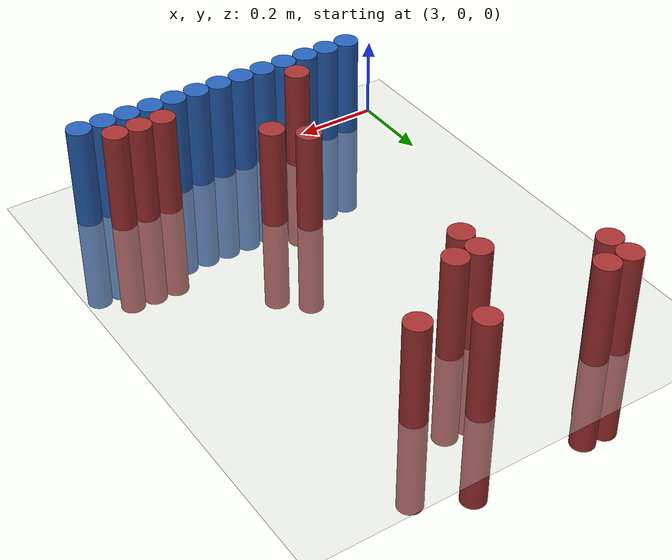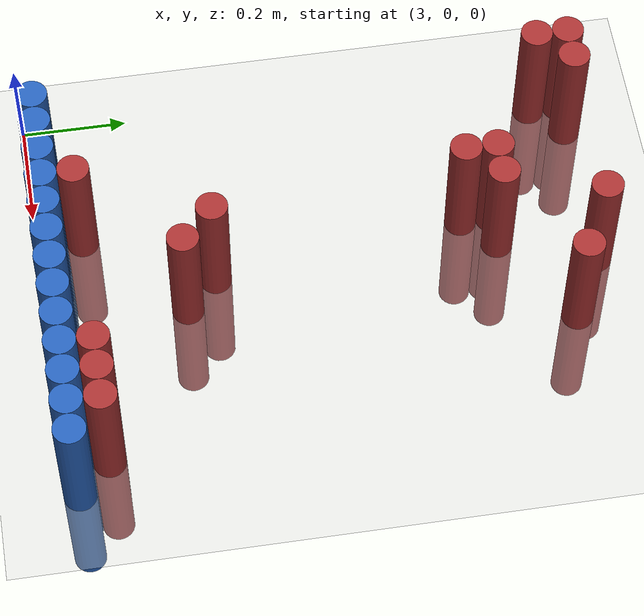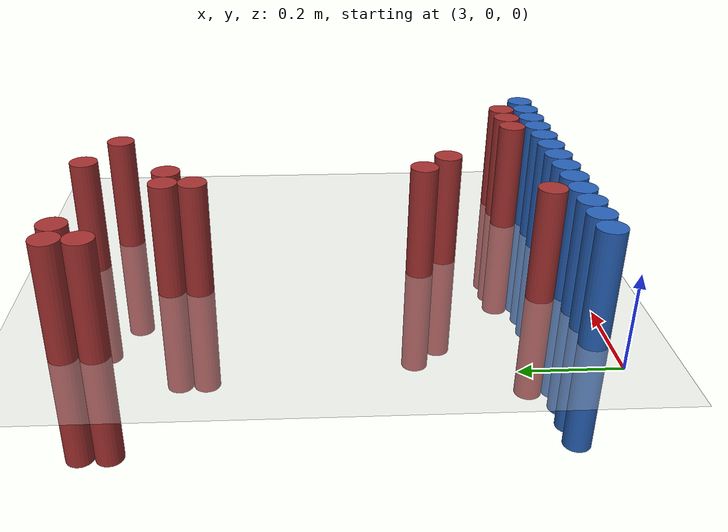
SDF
<sdf version="1.6">
 <world name="default">
  <model name="ground_plane">
   <static>1</static>
   <link name="link">
    <collision name="collision">
     <geometry><plane><normal>0 0 1</normal><size>100 100</size></plane></geometry>
     <surface><friction><ode><mu>100</mu><mu2>50</mu2></ode></friction></surface>
    </collision>
    <visual name="visual">
     <cast_shadows>0</cast_shadows>
     <geometry><plane><normal>0 0 1</normal><size>100 100</size></plane></geometry>
     <material>
      <script><uri>file://media/materials/scripts/gazebo.material</uri><name>Gazebo/Grey</name></script>
     </material>
    </visual>
   </link>
  </model>
  <model name="unit_cylinder_148">
   <static>1</static>
   <pose>3.090000 1.050000 0.000000 0.000000 0.000000 0.000000</pose>
   <link name="link">
    <inertial>
     <mass>1</mass>
     <inertia><ixx>0.145833</ixx><ixy>0</ixy><ixz>0</ixz><iyy>0.145833</iyy><iyz>0</iyz><izz>0.125</izz></inertia>
    </inertial>
    <collision name="collision">
     <geometry><cylinder><radius>0.030000</radius><length>0.5</length></cylinder></geometry>
    </collision>
    <visual name="visual">
     <geometry><cylinder><radius>0.030000</radius><length>0.5</length></cylinder></geometry>
     <material>
      <ambient>0.648000 0.192000 0.192000 1</ambient>
      <diffuse>0.648000 0.192000 0.192000 1</diffuse>
     </material>
     <material>
      <script><name>Gazebo/Grey</name><uri>file://media/materials/scripts/gazebo.material</uri></script>
     </material>
    </visual>
   </link>
  </model>
  <model name="unit_cylinder_149">
   <static>1</static>
   <pose>3.150000 1.050000 0.000000 0.000000 0.000000 0.000000</pose>
   <link name="link">
    <inertial>
     <mass>1</mass>
     <inertia><ixx>0.145833</ixx><ixy>0</ixy><ixz>0</ixz><iyy>0.145833</iyy><iyz>0</iyz><izz>0.125</izz></inertia>
    </inertial>
    <collision name="collision">
     <geometry><cylinder><radius>0.030000</radius><length>0.5</length></cylinder></geometry>
    </collision>
    <visual name="visual">
     <geometry><cylinder><radius>0.030000</radius><length>0.5</length></cylinder></geometry>
     <material>
      <ambient>0.648000 0.192000 0.192000 1</ambient>
      <diffuse>0.648000 0.192000 0.192000 1</diffuse>
     </material>
     <material>
      <script><name>Gazebo/Grey</name><uri>file://media/materials/scripts/gazebo.material</uri></script>
     </material>
    </visual>
   </link>
  </model>
  <model name="unit_cylinder_150">
   <static>1</static>
   <pose>3.450000 1.050000 0.000000 0.000000 0.000000 0.000000</pose>
   <link name="link">
    <inertial>
     <mass>1</mass>
     <inertia><ixx>0.145833</ixx><ixy>0</ixy><ixz>0</ixz><iyy>0.145833</iyy><iyz>0</iyz><izz>0.125</izz></inertia>
    </inertial>
    <collision name="collision">
     <geometry><cylinder><radius>0.030000</radius><length>0.5</length></cylinder></geometry>
    </collision>
    <visual name="visual">
     <geometry><cylinder><radius>0.030000</radius><length>0.5</length></cylinder></geometry>
     <material>
      <ambient>0.648000 0.192000 0.192000 1</ambient>
      <diffuse>0.648000 0.192000 0.192000 1</diffuse>
     </material>
     <material>
      <script><name>Gazebo/Grey</name><uri>file://media/materials/scripts/gazebo.material</uri></script>
     </material>
    </visual>
   </link>
  </model>
  <model name="unit_cylinder_155">
   <static>1</static>
   <pose>3.090000 0.990000 0.000000 0.000000 0.000000 0.000000</pose>
   <link name="link">
    <inertial>
     <mass>1</mass>
     <inertia><ixx>0.145833</ixx><ixy>0</ixy><ixz>0</ixz><iyy>0.145833</iyy><iyz>0</iyz><izz>0.125</izz></inertia>
    </inertial>
    <collision name="collision">
     <geometry><cylinder><radius>0.030000</radius><length>0.5</length></cylinder></geometry>
    </collision>
    <visual name="visual">
     <geometry><cylinder><radius>0.030000</radius><length>0.5</length></cylinder></geometry>
     <material>
      <ambient>0.648000 0.192000 0.192000 1</ambient>
      <diffuse>0.648000 0.192000 0.192000 1</diffuse>
     </material>
     <material>
      <script><name>Gazebo/Grey</name><uri>file://media/materials/scripts/gazebo.material</uri></script>
     </material>
    </visual>
   </link>
  </model>
  <model name="unit_cylinder_156">
   <static>1</static>
   <pose>3.570000 0.990000 0.000000 0.000000 0.000000 0.000000</pose>
   <link name="link">
    <inertial>
     <mass>1</mass>
     <inertia><ixx>0.145833</ixx><ixy>0</ixy><ixz>0</ixz><iyy>0.145833</iyy><iyz>0</iyz><izz>0.125</izz></inertia>
    </inertial>
    <collision name="collision">
     <geometry><cylinder><radius>0.030000</radius><length>0.5</length></cylinder></geometry>
    </collision>
    <visual name="visual">
     <geometry><cylinder><radius>0.030000</radius><length>0.5</length></cylinder></geometry>
     <material>
      <ambient>0.648000 0.192000 0.192000 1</ambient>
      <diffuse>0.648000 0.192000 0.192000 1</diffuse>
     </material>
     <material>
      <script><name>Gazebo/Grey</name><uri>file://media/materials/scripts/gazebo.material</uri></script>
     </material>
    </visual>
   </link>
  </model>
  <model name="unit_cylinder_163">
   <static>1</static>
   <pose>3.330000 0.870000 0.000000 0.000000 0.000000 0.000000</pose>
   <link name="link">
    <inertial>
     <mass>1</mass>
     <inertia><ixx>0.145833</ixx><ixy>0</ixy><ixz>0</ixz><iyy>0.145833</iyy><iyz>0</iyz><izz>0.125</izz></inertia>
    </inertial>
    <collision name="collision">
     <geometry><cylinder><radius>0.030000</radius><length>0.5</length></cylinder></geometry>
    </collision>
    <visual name="visual">
     <geometry><cylinder><radius>0.030000</radius><length>0.5</length></cylinder></geometry>
     <material>
      <ambient>0.648000 0.192000 0.192000 1</ambient>
      <diffuse>0.648000 0.192000 0.192000 1</diffuse>
     </material>
     <material>
      <script><name>Gazebo/Grey</name><uri>file://media/materials/scripts/gazebo.material</uri></script>
     </material>
    </visual>
   </link>
  </model>
  <model name="unit_cylinder_164">
   <static>1</static>
   <pose>3.390000 0.870000 0.000000 0.000000 0.000000 0.000000</pose>
   <link name="link">
    <inertial>
     <mass>1</mass>
     <inertia><ixx>0.145833</ixx><ixy>0</ixy><ixz>0</ixz><iyy>0.145833</iyy><iyz>0</iyz><izz>0.125</izz></inertia>
    </inertial>
    <collision name="collision">
     <geometry><cylinder><radius>0.030000</radius><length>0.5</length></cylinder></geometry>
    </collision>
    <visual name="visual">
     <geometry><cylinder><radius>0.030000</radius><length>0.5</length></cylinder></geometry>
     <material>
      <ambient>0.648000 0.192000 0.192000 1</ambient>
      <diffuse>0.648000 0.192000 0.192000 1</diffuse>
     </material>
     <material>
      <script><name>Gazebo/Grey</name><uri>file://media/materials/scripts/gazebo.material</uri></script>
     </material>
    </visual>
   </link>
  </model>
  <model name="unit_cylinder_170">
   <static>1</static>
   <pose>3.330000 0.810000 0.000000 0.000000 0.000000 0.000000</pose>
   <link name="link">
    <inertial>
     <mass>1</mass>
     <inertia><ixx>0.145833</ixx><ixy>0</ixy><ixz>0</ixz><iyy>0.145833</iyy><iyz>0</iyz><izz>0.125</izz></inertia>
    </inertial>
    <collision name="collision">
     <geometry><cylinder><radius>0.030000</radius><length>0.5</length></cylinder></geometry>
    </collision>
    <visual name="visual">
     <geometry><cylinder><radius>0.030000</radius><length>0.5</length></cylinder></geometry>
     <material>
      <ambient>0.648000 0.192000 0.192000 1</ambient>
      <diffuse>0.648000 0.192000 0.192000 1</diffuse>
     </material>
     <material>
      <script><name>Gazebo/Grey</name><uri>file://media/materials/scripts/gazebo.material</uri></script>
     </material>
    </visual>
   </link>
  </model>
  <model name="unit_cylinder_174">
   <static>1</static>
   <pose>3.390000 0.330000 0.000000 0.000000 0.000000 0.000000</pose>
   <link name="link">
    <inertial>
     <mass>1</mass>
     <inertia><ixx>0.145833</ixx><ixy>0</ixy><ixz>0</ixz><iyy>0.145833</iyy><iyz>0</iyz><izz>0.125</izz></inertia>
    </inertial>
    <collision name="collision">
     <geometry><cylinder><radius>0.030000</radius><length>0.5</length></cylinder></geometry>
    </collision>
    <visual name="visual">
     <geometry><cylinder><radius>0.030000</radius><length>0.5</length></cylinder></geometry>
     <material>
      <ambient>0.648000 0.192000 0.192000 1</ambient>
      <diffuse>0.648000 0.192000 0.192000 1</diffuse>
     </material>
     <material>
      <script><name>Gazebo/Grey</name><uri>file://media/materials/scripts/gazebo.material</uri></script>
     </material>
    </visual>
   </link>
  </model>
  <model name="unit_cylinder_175">
   <static>1</static>
   <pose>3.450000 0.270000 0.000000 0.000000 0.000000 0.000000</pose>
   <link name="link">
    <inertial>
     <mass>1</mass>
     <inertia><ixx>0.145833</ixx><ixy>0</ixy><ixz>0</ixz><iyy>0.145833</iyy><iyz>0</iyz><izz>0.125</izz></inertia>
    </inertial>
    <collision name="collision">
     <geometry><cylinder><radius>0.030000</radius><length>0.5</length></cylinder></geometry>
    </collision>
    <visual name="visual">
     <geometry><cylinder><radius>0.030000</radius><length>0.5</length></cylinder></geometry>
     <material>
      <ambient>0.648000 0.192000 0.192000 1</ambient>
      <diffuse>0.648000 0.192000 0.192000 1</diffuse>
     </material>
     <material>
      <script><name>Gazebo/Grey</name><uri>file://media/materials/scripts/gazebo.material</uri></script>
     </material>
    </visual>
   </link>
  </model>
  <model name="unit_cylinder_178">
   <static>1</static>
   <pose>3.270000 0.090000 0.000000 0.000000 0.000000 0.000000</pose>
   <link name="link">
    <inertial>
     <mass>1</mass>
     <inertia><ixx>0.145833</ixx><ixy>0</ixy><ixz>0</ixz><iyy>0.145833</iyy><iyz>0</iyz><izz>0.125</izz></inertia>
    </inertial>
    <collision name="collision">
     <geometry><cylinder><radius>0.030000</radius><length>0.5</length></cylinder></geometry>
    </collision>
    <visual name="visual">
     <geometry><cylinder><radius>0.030000</radius><length>0.5</length></cylinder></geometry>
     <material>
      <ambient>0.648000 0.192000 0.192000 1</ambient>
      <diffuse>0.648000 0.192000 0.192000 1</diffuse>
     </material>
     <material>
      <script><name>Gazebo/Grey</name><uri>file://media/materials/scripts/gazebo.material</uri></script>
     </material>
    </visual>
   </link>
  </model>
  <model name="unit_cylinder_179">
   <static>1</static>
   <pose>3.630000 0.090000 0.000000 0.000000 0.000000 0.000000</pose>
   <link name="link">
    <inertial>
     <mass>1</mass>
     <inertia><ixx>0.145833</ixx><ixy>0</ixy><ixz>0</ixz><iyy>0.145833</iyy><iyz>0</iyz><izz>0.125</izz></inertia>
    </inertial>
    <collision name="collision">
     <geometry><cylinder><radius>0.030000</radius><length>0.5</length></cylinder></geometry>
    </collision>
    <visual name="visual">
     <geometry><cylinder><radius>0.030000</radius><length>0.5</length></cylinder></geometry>
     <material>
      <ambient>0.648000 0.192000 0.192000 1</ambient>
      <diffuse>0.648000 0.192000 0.192000 1</diffuse>
     </material>
     <material>
      <script><name>Gazebo/Grey</name><uri>file://media/materials/scripts/gazebo.material</uri></script>
     </material>
    </visual>
   </link>
  </model>
  <model name="unit_cylinder_180">
   <static>1</static>
   <pose>3.690000 0.090000 0.000000 0.000000 0.000000 0.000000</pose>
   <link name="link">
    <inertial>
     <mass>1</mass>
     <inertia><ixx>0.145833</ixx><ixy>0</ixy><ixz>0</ixz><iyy>0.145833</iyy><iyz>0</iyz><izz>0.125</izz></inertia>
    </inertial>
    <collision name="collision">
     <geometry><cylinder><radius>0.030000</radius><length>0.5</length></cylinder></geometry>
    </collision>
    <visual name="visual">
     <geometry><cylinder><radius>0.030000</radius><length>0.5</length></cylinder></geometry>
     <material>
      <ambient>0.648000 0.192000 0.192000 1</ambient>
      <diffuse>0.648000 0.192000 0.192000 1</diffuse>
     </material>
     <material>
      <script><name>Gazebo/Grey</name><uri>file://media/materials/scripts/gazebo.material</uri></script>
     </material>
    </visual>
   </link>
  </model>
  <model name="unit_cylinder_181">
   <static>1</static>
   <pose>3.750000 0.090000 0.000000 0.000000 0.000000 0.000000</pose>
   <link name="link">
    <inertial>
     <mass>1</mass>
     <inertia><ixx>0.145833</ixx><ixy>0</ixy><ixz>0</ixz><iyy>0.145833</iyy><iyz>0</iyz><izz>0.125</izz></inertia>
    </inertial>
    <collision name="collision">
     <geometry><cylinder><radius>0.030000</radius><length>0.5</length></cylinder></geometry>
    </collision>
    <visual name="visual">
     <geometry><cylinder><radius>0.030000</radius><length>0.5</length></cylinder></geometry>
     <material>
      <ambient>0.648000 0.192000 0.192000 1</ambient>
      <diffuse>0.648000 0.192000 0.192000 1</diffuse>
     </material>
     <material>
      <script><name>Gazebo/Grey</name><uri>file://media/materials/scripts/gazebo.material</uri></script>
     </material>
    </visual>
   </link>
  </model>
  <model name="unit_cylinder_199">
   <static>1</static>
   <pose>3.090000 0.030000 0.000000 0.000000 0.000000 0.000000</pose>
   <link name="link">
    <inertial>
     <mass>1</mass>
     <inertia><ixx>0.145833</ixx><ixy>0</ixy><ixz>0</ixz><iyy>0.145833</iyy><iyz>0</iyz><izz>0.125</izz></inertia>
    </inertial>
    <collision name="collision">
     <geometry><cylinder><radius>0.030000</radius><length>0.5</length></cylinder></geometry>
    </collision>
    <visual name="visual">
     <geometry><cylinder><radius>0.030000</radius><length>0.5</length></cylinder></geometry>
     <material>
      <ambient>0.152000 0.379000 0.720000 1</ambient>
      <diffuse>0.152000 0.379000 0.720000 1</diffuse>
     </material>
     <material>
      <script><name>Gazebo/Grey</name><uri>file://media/materials/scripts/gazebo.material</uri></script>
     </material>
    </visual>
   </link>
  </model>
  <model name="unit_cylinder_200">
   <static>1</static>
   <pose>3.150000 0.030000 0.000000 0.000000 0.000000 0.000000</pose>
   <link name="link">
    <inertial>
     <mass>1</mass>
     <inertia><ixx>0.145833</ixx><ixy>0</ixy><ixz>0</ixz><iyy>0.145833</iyy><iyz>0</iyz><izz>0.125</izz></inertia>
    </inertial>
    <collision name="collision">
     <geometry><cylinder><radius>0.030000</radius><length>0.5</length></cylinder></geometry>
    </collision>
    <visual name="visual">
     <geometry><cylinder><radius>0.030000</radius><length>0.5</length></cylinder></geometry>
     <material>
      <ambient>0.152000 0.379000 0.720000 1</ambient>
      <diffuse>0.152000 0.379000 0.720000 1</diffuse>
     </material>
     <material>
      <script><name>Gazebo/Grey</name><uri>file://media/materials/scripts/gazebo.material</uri></script>
     </material>
    </visual>
   </link>
  </model>
  <model name="unit_cylinder_201">
   <static>1</static>
   <pose>3.210000 0.030000 0.000000 0.000000 0.000000 0.000000</pose>
   <link name="link">
    <inertial>
     <mass>1</mass>
     <inertia><ixx>0.145833</ixx><ixy>0</ixy><ixz>0</ixz><iyy>0.145833</iyy><iyz>0</iyz><izz>0.125</izz></inertia>
    </inertial>
    <collision name="collision">
     <geometry><cylinder><radius>0.030000</radius><length>0.5</length></cylinder></geometry>
    </collision>
    <visual name="visual">
     <geometry><cylinder><radius>0.030000</radius><length>0.5</length></cylinder></geometry>
     <material>
      <ambient>0.152000 0.379000 0.720000 1</ambient>
      <diffuse>0.152000 0.379000 0.720000 1</diffuse>
     </material>
     <material>
      <script><name>Gazebo/Grey</name><uri>file://media/materials/scripts/gazebo.material</uri></script>
     </material>
    </visual>
   </link>
  </model>
  <model name="unit_cylinder_202">
   <static>1</static>
   <pose>3.270000 0.030000 0.000000 0.000000 0.000000 0.000000</pose>
   <link name="link">
    <inertial>
     <mass>1</mass>
     <inertia><ixx>0.145833</ixx><ixy>0</ixy><ixz>0</ixz><iyy>0.145833</iyy><iyz>0</iyz><izz>0.125</izz></inertia>
    </inertial>
    <collision name="collision">
     <geometry><cylinder><radius>0.030000</radius><length>0.5</length></cylinder></geometry>
    </collision>
    <visual name="visual">
     <geometry><cylinder><radius>0.030000</radius><length>0.5</length></cylinder></geometry>
     <material>
      <ambient>0.152000 0.379000 0.720000 1</ambient>
      <diffuse>0.152000 0.379000 0.720000 1</diffuse>
     </material>
     <material>
      <script><name>Gazebo/Grey</name><uri>file://media/materials/scripts/gazebo.material</uri></script>
     </material>
    </visual>
   </link>
  </model>
  <model name="unit_cylinder_203">
   <static>1</static>
   <pose>3.330000 0.030000 0.000000 0.000000 0.000000 0.000000</pose>
   <link name="link">
    <inertial>
     <mass>1</mass>
     <inertia><ixx>0.145833</ixx><ixy>0</ixy><ixz>0</ixz><iyy>0.145833</iyy><iyz>0</iyz><izz>0.125</izz></inertia>
    </inertial>
    <collision name="collision">
     <geometry><cylinder><radius>0.030000</radius><length>0.5</length></cylinder></geometry>
    </collision>
    <visual name="visual">
     <geometry><cylinder><radius>0.030000</radius><length>0.5</length></cylinder></geometry>
     <material>
      <ambient>0.152000 0.379000 0.720000 1</ambient>
      <diffuse>0.152000 0.379000 0.720000 1</diffuse>
     </material>
     <material>
      <script><name>Gazebo/Grey</name><uri>file://media/materials/scripts/gazebo.material</uri></script>
     </material>
    </visual>
   </link>
  </model>
  <model name="unit_cylinder_204">
   <static>1</static>
   <pose>3.390000 0.030000 0.000000 0.000000 0.000000 0.000000</pose>
   <link name="link">
    <inertial>
     <mass>1</mass>
     <inertia><ixx>0.145833</ixx><ixy>0</ixy><ixz>0</ixz><iyy>0.145833</iyy><iyz>0</iyz><izz>0.125</izz></inertia>
    </inertial>
    <collision name="collision">
     <geometry><cylinder><radius>0.030000</radius><length>0.5</length></cylinder></geometry>
    </collision>
    <visual name="visual">
     <geometry><cylinder><radius>0.030000</radius><length>0.5</length></cylinder></geometry>
     <material>
      <ambient>0.152000 0.379000 0.720000 1</ambient>
      <diffuse>0.152000 0.379000 0.720000 1</diffuse>
     </material>
     <material>
      <script><name>Gazebo/Grey</name><uri>file://media/materials/scripts/gazebo.material</uri></script>
     </material>
    </visual>
   </link>
  </model>
  <model name="unit_cylinder_205">
   <static>1</static>
   <pose>3.450000 0.030000 0.000000 0.000000 0.000000 0.000000</pose>
   <link name="link">
    <inertial>
     <mass>1</mass>
     <inertia><ixx>0.145833</ixx><ixy>0</ixy><ixz>0</ixz><iyy>0.145833</iyy><iyz>0</iyz><izz>0.125</izz></inertia>
    </inertial>
    <collision name="collision">
     <geometry><cylinder><radius>0.030000</radius><length>0.5</length></cylinder></geometry>
    </collision>
    <visual name="visual">
     <geometry><cylinder><radius>0.030000</radius><length>0.5</length></cylinder></geometry>
     <material>
      <ambient>0.152000 0.379000 0.720000 1</ambient>
      <diffuse>0.152000 0.379000 0.720000 1</diffuse>
     </material>
     <material>
      <script><name>Gazebo/Grey</name><uri>file://media/materials/scripts/gazebo.material</uri></script>
     </material>
    </visual>
   </link>
  </model>
  <model name="unit_cylinder_206">
   <static>1</static>
   <pose>3.510000 0.030000 0.000000 0.000000 0.000000 0.000000</pose>
   <link name="link">
    <inertial>
     <mass>1</mass>
     <inertia><ixx>0.145833</ixx><ixy>0</ixy><ixz>0</ixz><iyy>0.145833</iyy><iyz>0</iyz><izz>0.125</izz></inertia>
    </inertial>
    <collision name="collision">
     <geometry><cylinder><radius>0.030000</radius><length>0.5</length></cylinder></geometry>
    </collision>
    <visual name="visual">
     <geometry><cylinder><radius>0.030000</radius><length>0.5</length></cylinder></geometry>
     <material>
      <ambient>0.152000 0.379000 0.720000 1</ambient>
      <diffuse>0.152000 0.379000 0.720000 1</diffuse>
     </material>
     <material>
      <script><name>Gazebo/Grey</name><uri>file://media/materials/scripts/gazebo.material</uri></script>
     </material>
    </visual>
   </link>
  </model>
  <model name="unit_cylinder_207">
   <static>1</static>
   <pose>3.570000 0.030000 0.000000 0.000000 0.000000 0.000000</pose>
   <link name="link">
    <inertial>
     <mass>1</mass>
     <inertia><ixx>0.145833</ixx><ixy>0</ixy><ixz>0</ixz><iyy>0.145833</iyy><iyz>0</iyz><izz>0.125</izz></inertia>
    </inertial>
    <collision name="collision">
     <geometry><cylinder><radius>0.030000</radius><length>0.5</length></cylinder></geometry>
    </collision>
    <visual name="visual">
     <geometry><cylinder><radius>0.030000</radius><length>0.5</length></cylinder></geometry>
     <material>
      <ambient>0.152000 0.379000 0.720000 1</ambient>
      <diffuse>0.152000 0.379000 0.720000 1</diffuse>
     </material>
     <material>
      <script><name>Gazebo/Grey</name><uri>file://media/materials/scripts/gazebo.material</uri></script>
     </material>
    </visual>
   </link>
  </model>
  <model name="unit_cylinder_208">
   <static>1</static>
   <pose>3.630000 0.030000 0.000000 0.000000 0.000000 0.000000</pose>
   <link name="link">
    <inertial>
     <mass>1</mass>
     <inertia><ixx>0.145833</ixx><ixy>0</ixy><ixz>0</ixz><iyy>0.145833</iyy><iyz>0</iyz><izz>0.125</izz></inertia>
    </inertial>
    <collision name="collision">
     <geometry><cylinder><radius>0.030000</radius><length>0.5</length></cylinder></geometry>
    </collision>
    <visual name="visual">
     <geometry><cylinder><radius>0.030000</radius><length>0.5</length></cylinder></geometry>
     <material>
      <ambient>0.152000 0.379000 0.720000 1</ambient>
      <diffuse>0.152000 0.379000 0.720000 1</diffuse>
     </material>
     <material>
      <script><name>Gazebo/Grey</name><uri>file://media/materials/scripts/gazebo.material</uri></script>
     </material>
    </visual>
   </link>
  </model>
  <model name="unit_cylinder_209">
   <static>1</static>
   <pose>3.690000 0.030000 0.000000 0.000000 0.000000 0.000000</pose>
   <link name="link">
    <inertial>
     <mass>1</mass>
     <inertia><ixx>0.145833</ixx><ixy>0</ixy><ixz>0</ixz><iyy>0.145833</iyy><iyz>0</iyz><izz>0.125</izz></inertia>
    </inertial>
    <collision name="collision">
     <geometry><cylinder><radius>0.030000</radius><length>0.5</length></cylinder></geometry>
    </collision>
    <visual name="visual">
     <geometry><cylinder><radius>0.030000</radius><length>0.5</length></cylinder></geometry>
     <material>
      <ambient>0.152000 0.379000 0.720000 1</ambient>
      <diffuse>0.152000 0.379000 0.720000 1</diffuse>
     </material>
     <material>
      <script><name>Gazebo/Grey</name><uri>file://media/materials/scripts/gazebo.material</uri></script>
     </material>
    </visual>
   </link>
  </model>
  <model name="unit_cylinder_210">
   <static>1</static>
   <pose>3.750000 0.030000 0.000000 0.000000 0.000000 0.000000</pose>
   <link name="link">
    <inertial>
     <mass>1</mass>
     <inertia><ixx>0.145833</ixx><ixy>0</ixy><ixz>0</ixz><iyy>0.145833</iyy><iyz>0</iyz><izz>0.125</izz></inertia>
    </inertial>
    <collision name="collision">
     <geometry><cylinder><radius>0.030000</radius><length>0.5</length></cylinder></geometry>
    </collision>
    <visual name="visual">
     <geometry><cylinder><radius>0.030000</radius><length>0.5</length></cylinder></geometry>
     <material>
      <ambient>0.152000 0.379000 0.720000 1</ambient>
      <diffuse>0.152000 0.379000 0.720000 1</diffuse>
     </material>
     <material>
      <script><name>Gazebo/Grey</name><uri>file://media/materials/scripts/gazebo.material</uri></script>
     </material>
    </visual>
   </link>
  </model>
  <model name="unit_cylinder_211">
   <static>1</static>
   <pose>3.810000 0.030000 0.000000 0.000000 0.000000 0.000000</pose>
   <link name="link">
    <inertial>
     <mass>1</mass>
     <inertia><ixx>0.145833</ixx><ixy>0</ixy><ixz>0</ixz><iyy>0.145833</iyy><iyz>0</iyz><izz>0.125</izz></inertia>
    </inertial>
    <collision name="collision">
     <geometry><cylinder><radius>0.030000</radius><length>0.5</length></cylinder></geometry>
    </collision>
    <visual name="visual">
     <geometry><cylinder><radius>0.030000</radius><length>0.5</length></cylinder></geometry>
     <material>
      <ambient>0.152000 0.379000 0.720000 1</ambient>
      <diffuse>0.152000 0.379000 0.720000 1</diffuse>
     </material>
     <material>
      <script><name>Gazebo/Grey</name><uri>file://media/materials/scripts/gazebo.material</uri></script>
     </material>
    </visual>
   </link>
  </model>
 </world>
</sdf>
